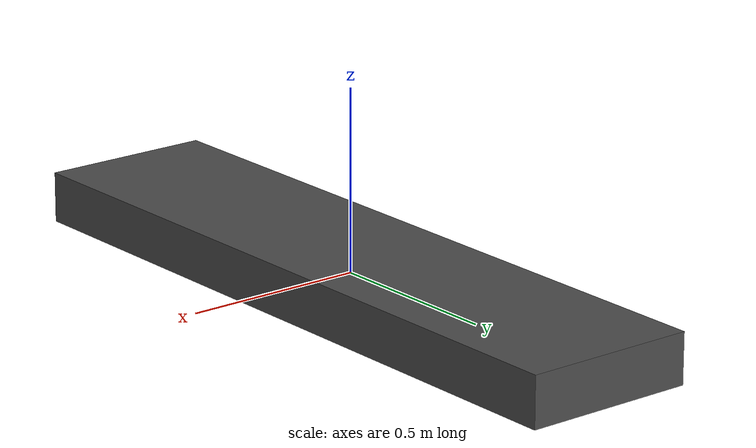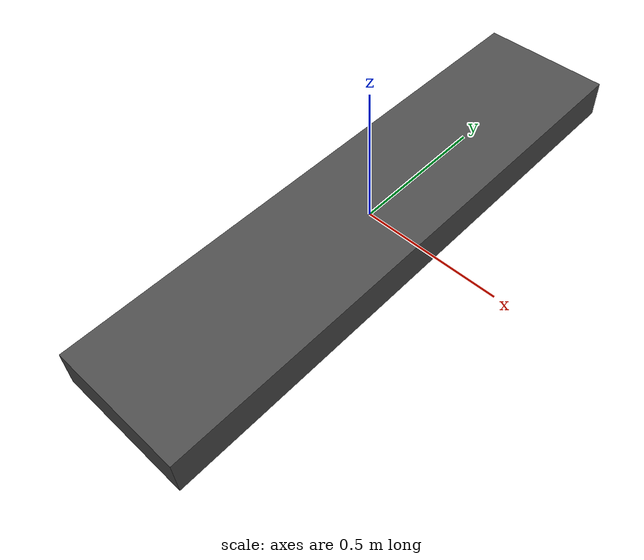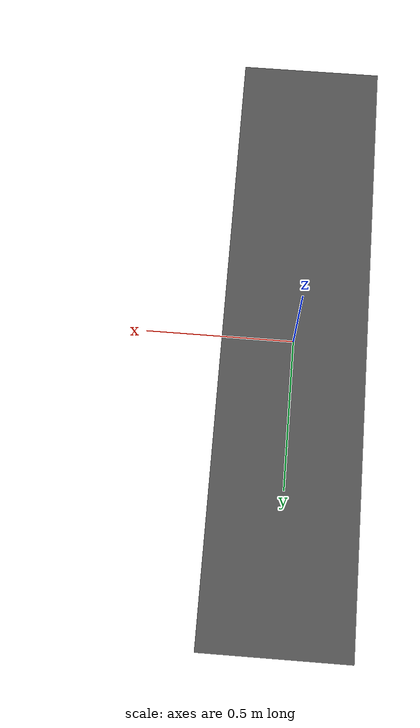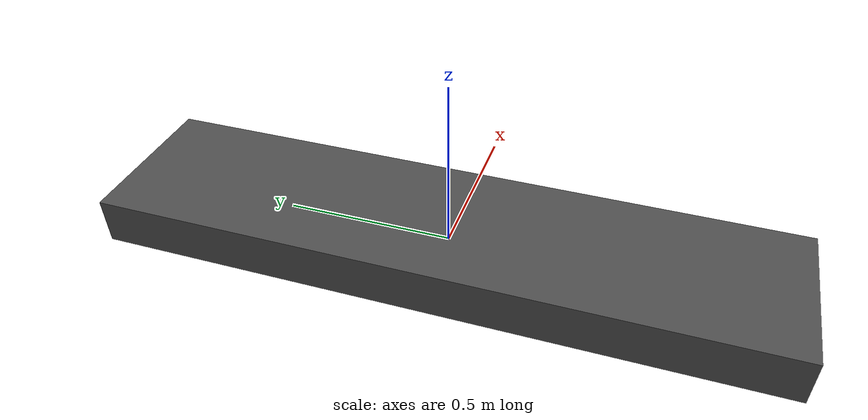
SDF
<?xml version="1.0" ?>
<sdf version="1.5">
  <model name="asphalt_pallet">
    <static>true</static>
    <link name="link">
      <collision name="collision">
        <geometry>
          <box>
            <size>0.48 2 .14</size>
          </box>
        </geometry>
      </collision>
      <visual name="visual">
        <cast_shadows>false</cast_shadows>
        <geometry>
          <box>
            <size>0.48 2 .14</size>
          </box>
        </geometry>
        <material>
          <script>
            <uri>model://asphalt_plane/materials/scripts</uri>
            <uri>model://asphalt_plane/materials/textures</uri>
            <name>vrc/asphalt</name>
          </script>
        </material>
      </visual>
    </link>
  </model>
</sdf>
